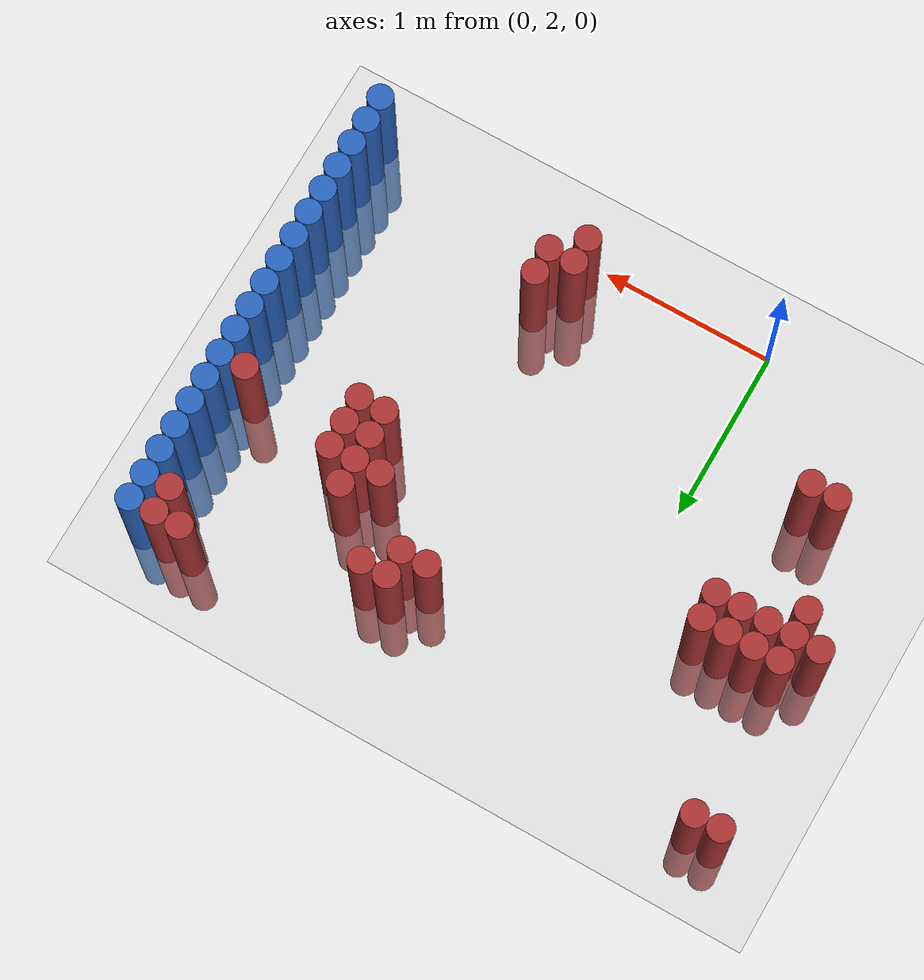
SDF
<sdf version="1.6">
 <world name="default">
  <model name="ground_plane">
   <static>1</static>
   <link name="link">
    <collision name="collision">
     <geometry><plane><normal>0 0 1</normal><size>100 100</size></plane></geometry>
     <surface><friction><ode><mu>100</mu><mu2>50</mu2></ode></friction></surface>
    </collision>
    <visual name="visual">
     <cast_shadows>0</cast_shadows>
     <geometry><plane><normal>0 0 1</normal><size>100 100</size></plane></geometry>
     <material>
      <script><uri>file://media/materials/scripts/gazebo.material</uri><name>Gazebo/Grey</name></script>
     </material>
    </visual>
   </link>
  </model>
  <model name="unit_cylinder_149">
   <static>1</static>
   <pose>-1.025000 3.475000 0.000000 0.000000 0.000000 0.000000</pose>
   <link name="link">
    <inertial>
     <mass>1</mass>
     <inertia><ixx>0.145833</ixx><ixy>0</ixy><ixz>0</ixz><iyy>0.145833</iyy><iyz>0</iyz><izz>0.125</izz></inertia>
    </inertial>
    <collision name="collision">
     <geometry><cylinder><radius>0.075000</radius><length>1.5</length></cylinder></geometry>
    </collision>
    <visual name="visual">
     <geometry><cylinder><radius>0.075000</radius><length>1.5</length></cylinder></geometry>
     <material>
      <ambient>0.648000 0.192000 0.192000 1</ambient>
      <diffuse>0.648000 0.192000 0.192000 1</diffuse>
     </material>
     <material>
      <script><name>Gazebo/Grey</name><uri>file://media/materials/scripts/gazebo.material</uri></script>
     </material>
    </visual>
   </link>
  </model>
  <model name="unit_cylinder_150">
   <static>1</static>
   <pose>-1.025000 4.525000 0.000000 0.000000 0.000000 0.000000</pose>
   <link name="link">
    <inertial>
     <mass>1</mass>
     <inertia><ixx>0.145833</ixx><ixy>0</ixy><ixz>0</ixz><iyy>0.145833</iyy><iyz>0</iyz><izz>0.125</izz></inertia>
    </inertial>
    <collision name="collision">
     <geometry><cylinder><radius>0.075000</radius><length>1.5</length></cylinder></geometry>
    </collision>
    <visual name="visual">
     <geometry><cylinder><radius>0.075000</radius><length>1.5</length></cylinder></geometry>
     <material>
      <ambient>0.648000 0.192000 0.192000 1</ambient>
      <diffuse>0.648000 0.192000 0.192000 1</diffuse>
     </material>
     <material>
      <script><name>Gazebo/Grey</name><uri>file://media/materials/scripts/gazebo.material</uri></script>
     </material>
    </visual>
   </link>
  </model>
  <model name="unit_cylinder_151">
   <static>1</static>
   <pose>-0.875000 3.325000 0.000000 0.000000 0.000000 0.000000</pose>
   <link name="link">
    <inertial>
     <mass>1</mass>
     <inertia><ixx>0.145833</ixx><ixy>0</ixy><ixz>0</ixz><iyy>0.145833</iyy><iyz>0</iyz><izz>0.125</izz></inertia>
    </inertial>
    <collision name="collision">
     <geometry><cylinder><radius>0.075000</radius><length>1.5</length></cylinder></geometry>
    </collision>
    <visual name="visual">
     <geometry><cylinder><radius>0.075000</radius><length>1.5</length></cylinder></geometry>
     <material>
      <ambient>0.648000 0.192000 0.192000 1</ambient>
      <diffuse>0.648000 0.192000 0.192000 1</diffuse>
     </material>
     <material>
      <script><name>Gazebo/Grey</name><uri>file://media/materials/scripts/gazebo.material</uri></script>
     </material>
    </visual>
   </link>
  </model>
  <model name="unit_cylinder_152">
   <static>1</static>
   <pose>-0.875000 3.475000 0.000000 0.000000 0.000000 0.000000</pose>
   <link name="link">
    <inertial>
     <mass>1</mass>
     <inertia><ixx>0.145833</ixx><ixy>0</ixy><ixz>0</ixz><iyy>0.145833</iyy><iyz>0</iyz><izz>0.125</izz></inertia>
    </inertial>
    <collision name="collision">
     <geometry><cylinder><radius>0.075000</radius><length>1.5</length></cylinder></geometry>
    </collision>
    <visual name="visual">
     <geometry><cylinder><radius>0.075000</radius><length>1.5</length></cylinder></geometry>
     <material>
      <ambient>0.648000 0.192000 0.192000 1</ambient>
      <diffuse>0.648000 0.192000 0.192000 1</diffuse>
     </material>
     <material>
      <script><name>Gazebo/Grey</name><uri>file://media/materials/scripts/gazebo.material</uri></script>
     </material>
    </visual>
   </link>
  </model>
  <model name="unit_cylinder_153">
   <static>1</static>
   <pose>-0.875000 3.625000 0.000000 0.000000 0.000000 0.000000</pose>
   <link name="link">
    <inertial>
     <mass>1</mass>
     <inertia><ixx>0.145833</ixx><ixy>0</ixy><ixz>0</ixz><iyy>0.145833</iyy><iyz>0</iyz><izz>0.125</izz></inertia>
    </inertial>
    <collision name="collision">
     <geometry><cylinder><radius>0.075000</radius><length>1.5</length></cylinder></geometry>
    </collision>
    <visual name="visual">
     <geometry><cylinder><radius>0.075000</radius><length>1.5</length></cylinder></geometry>
     <material>
      <ambient>0.648000 0.192000 0.192000 1</ambient>
      <diffuse>0.648000 0.192000 0.192000 1</diffuse>
     </material>
     <material>
      <script><name>Gazebo/Grey</name><uri>file://media/materials/scripts/gazebo.material</uri></script>
     </material>
    </visual>
   </link>
  </model>
  <model name="unit_cylinder_154">
   <static>1</static>
   <pose>-0.875000 4.525000 0.000000 0.000000 0.000000 0.000000</pose>
   <link name="link">
    <inertial>
     <mass>1</mass>
     <inertia><ixx>0.145833</ixx><ixy>0</ixy><ixz>0</ixz><iyy>0.145833</iyy><iyz>0</iyz><izz>0.125</izz></inertia>
    </inertial>
    <collision name="collision">
     <geometry><cylinder><radius>0.075000</radius><length>1.5</length></cylinder></geometry>
    </collision>
    <visual name="visual">
     <geometry><cylinder><radius>0.075000</radius><length>1.5</length></cylinder></geometry>
     <material>
      <ambient>0.648000 0.192000 0.192000 1</ambient>
      <diffuse>0.648000 0.192000 0.192000 1</diffuse>
     </material>
     <material>
      <script><name>Gazebo/Grey</name><uri>file://media/materials/scripts/gazebo.material</uri></script>
     </material>
    </visual>
   </link>
  </model>
  <model name="unit_cylinder_155">
   <static>1</static>
   <pose>-0.725000 2.725000 0.000000 0.000000 0.000000 0.000000</pose>
   <link name="link">
    <inertial>
     <mass>1</mass>
     <inertia><ixx>0.145833</ixx><ixy>0</ixy><ixz>0</ixz><iyy>0.145833</iyy><iyz>0</iyz><izz>0.125</izz></inertia>
    </inertial>
    <collision name="collision">
     <geometry><cylinder><radius>0.075000</radius><length>1.5</length></cylinder></geometry>
    </collision>
    <visual name="visual">
     <geometry><cylinder><radius>0.075000</radius><length>1.5</length></cylinder></geometry>
     <material>
      <ambient>0.648000 0.192000 0.192000 1</ambient>
      <diffuse>0.648000 0.192000 0.192000 1</diffuse>
     </material>
     <material>
      <script><name>Gazebo/Grey</name><uri>file://media/materials/scripts/gazebo.material</uri></script>
     </material>
    </visual>
   </link>
  </model>
  <model name="unit_cylinder_156">
   <static>1</static>
   <pose>-0.725000 3.475000 0.000000 0.000000 0.000000 0.000000</pose>
   <link name="link">
    <inertial>
     <mass>1</mass>
     <inertia><ixx>0.145833</ixx><ixy>0</ixy><ixz>0</ixz><iyy>0.145833</iyy><iyz>0</iyz><izz>0.125</izz></inertia>
    </inertial>
    <collision name="collision">
     <geometry><cylinder><radius>0.075000</radius><length>1.5</length></cylinder></geometry>
    </collision>
    <visual name="visual">
     <geometry><cylinder><radius>0.075000</radius><length>1.5</length></cylinder></geometry>
     <material>
      <ambient>0.648000 0.192000 0.192000 1</ambient>
      <diffuse>0.648000 0.192000 0.192000 1</diffuse>
     </material>
     <material>
      <script><name>Gazebo/Grey</name><uri>file://media/materials/scripts/gazebo.material</uri></script>
     </material>
    </visual>
   </link>
  </model>
  <model name="unit_cylinder_157">
   <static>1</static>
   <pose>-0.725000 3.625000 0.000000 0.000000 0.000000 0.000000</pose>
   <link name="link">
    <inertial>
     <mass>1</mass>
     <inertia><ixx>0.145833</ixx><ixy>0</ixy><ixz>0</ixz><iyy>0.145833</iyy><iyz>0</iyz><izz>0.125</izz></inertia>
    </inertial>
    <collision name="collision">
     <geometry><cylinder><radius>0.075000</radius><length>1.5</length></cylinder></geometry>
    </collision>
    <visual name="visual">
     <geometry><cylinder><radius>0.075000</radius><length>1.5</length></cylinder></geometry>
     <material>
      <ambient>0.648000 0.192000 0.192000 1</ambient>
      <diffuse>0.648000 0.192000 0.192000 1</diffuse>
     </material>
     <material>
      <script><name>Gazebo/Grey</name><uri>file://media/materials/scripts/gazebo.material</uri></script>
     </material>
    </visual>
   </link>
  </model>
  <model name="unit_cylinder_162">
   <static>1</static>
   <pose>-0.575000 2.725000 0.000000 0.000000 0.000000 0.000000</pose>
   <link name="link">
    <inertial>
     <mass>1</mass>
     <inertia><ixx>0.145833</ixx><ixy>0</ixy><ixz>0</ixz><iyy>0.145833</iyy><iyz>0</iyz><izz>0.125</izz></inertia>
    </inertial>
    <collision name="collision">
     <geometry><cylinder><radius>0.075000</radius><length>1.5</length></cylinder></geometry>
    </collision>
    <visual name="visual">
     <geometry><cylinder><radius>0.075000</radius><length>1.5</length></cylinder></geometry>
     <material>
      <ambient>0.648000 0.192000 0.192000 1</ambient>
      <diffuse>0.648000 0.192000 0.192000 1</diffuse>
     </material>
     <material>
      <script><name>Gazebo/Grey</name><uri>file://media/materials/scripts/gazebo.material</uri></script>
     </material>
    </visual>
   </link>
  </model>
  <model name="unit_cylinder_163">
   <static>1</static>
   <pose>-0.575000 3.475000 0.000000 0.000000 0.000000 0.000000</pose>
   <link name="link">
    <inertial>
     <mass>1</mass>
     <inertia><ixx>0.145833</ixx><ixy>0</ixy><ixz>0</ixz><iyy>0.145833</iyy><iyz>0</iyz><izz>0.125</izz></inertia>
    </inertial>
    <collision name="collision">
     <geometry><cylinder><radius>0.075000</radius><length>1.5</length></cylinder></geometry>
    </collision>
    <visual name="visual">
     <geometry><cylinder><radius>0.075000</radius><length>1.5</length></cylinder></geometry>
     <material>
      <ambient>0.648000 0.192000 0.192000 1</ambient>
      <diffuse>0.648000 0.192000 0.192000 1</diffuse>
     </material>
     <material>
      <script><name>Gazebo/Grey</name><uri>file://media/materials/scripts/gazebo.material</uri></script>
     </material>
    </visual>
   </link>
  </model>
  <model name="unit_cylinder_164">
   <static>1</static>
   <pose>-0.575000 3.625000 0.000000 0.000000 0.000000 0.000000</pose>
   <link name="link">
    <inertial>
     <mass>1</mass>
     <inertia><ixx>0.145833</ixx><ixy>0</ixy><ixz>0</ixz><iyy>0.145833</iyy><iyz>0</iyz><izz>0.125</izz></inertia>
    </inertial>
    <collision name="collision">
     <geometry><cylinder><radius>0.075000</radius><length>1.5</length></cylinder></geometry>
    </collision>
    <visual name="visual">
     <geometry><cylinder><radius>0.075000</radius><length>1.5</length></cylinder></geometry>
     <material>
      <ambient>0.648000 0.192000 0.192000 1</ambient>
      <diffuse>0.648000 0.192000 0.192000 1</diffuse>
     </material>
     <material>
      <script><name>Gazebo/Grey</name><uri>file://media/materials/scripts/gazebo.material</uri></script>
     </material>
    </visual>
   </link>
  </model>
  <model name="unit_cylinder_170">
   <static>1</static>
   <pose>-0.425000 3.475000 0.000000 0.000000 0.000000 0.000000</pose>
   <link name="link">
    <inertial>
     <mass>1</mass>
     <inertia><ixx>0.145833</ixx><ixy>0</ixy><ixz>0</ixz><iyy>0.145833</iyy><iyz>0</iyz><izz>0.125</izz></inertia>
    </inertial>
    <collision name="collision">
     <geometry><cylinder><radius>0.075000</radius><length>1.5</length></cylinder></geometry>
    </collision>
    <visual name="visual">
     <geometry><cylinder><radius>0.075000</radius><length>1.5</length></cylinder></geometry>
     <material>
      <ambient>0.648000 0.192000 0.192000 1</ambient>
      <diffuse>0.648000 0.192000 0.192000 1</diffuse>
     </material>
     <material>
      <script><name>Gazebo/Grey</name><uri>file://media/materials/scripts/gazebo.material</uri></script>
     </material>
    </visual>
   </link>
  </model>
  <model name="unit_cylinder_171">
   <static>1</static>
   <pose>-0.425000 3.625000 0.000000 0.000000 0.000000 0.000000</pose>
   <link name="link">
    <inertial>
     <mass>1</mass>
     <inertia><ixx>0.145833</ixx><ixy>0</ixy><ixz>0</ixz><iyy>0.145833</iyy><iyz>0</iyz><izz>0.125</izz></inertia>
    </inertial>
    <collision name="collision">
     <geometry><cylinder><radius>0.075000</radius><length>1.5</length></cylinder></geometry>
    </collision>
    <visual name="visual">
     <geometry><cylinder><radius>0.075000</radius><length>1.5</length></cylinder></geometry>
     <material>
      <ambient>0.648000 0.192000 0.192000 1</ambient>
      <diffuse>0.648000 0.192000 0.192000 1</diffuse>
     </material>
     <material>
      <script><name>Gazebo/Grey</name><uri>file://media/materials/scripts/gazebo.material</uri></script>
     </material>
    </visual>
   </link>
  </model>
  <model name="unit_cylinder_182">
   <static>1</static>
   <pose>0.925000 4.075000 0.000000 0.000000 0.000000 0.000000</pose>
   <link name="link">
    <inertial>
     <mass>1</mass>
     <inertia><ixx>0.145833</ixx><ixy>0</ixy><ixz>0</ixz><iyy>0.145833</iyy><iyz>0</iyz><izz>0.125</izz></inertia>
    </inertial>
    <collision name="collision">
     <geometry><cylinder><radius>0.075000</radius><length>1.5</length></cylinder></geometry>
    </collision>
    <visual name="visual">
     <geometry><cylinder><radius>0.075000</radius><length>1.5</length></cylinder></geometry>
     <material>
      <ambient>0.648000 0.192000 0.192000 1</ambient>
      <diffuse>0.648000 0.192000 0.192000 1</diffuse>
     </material>
     <material>
      <script><name>Gazebo/Grey</name><uri>file://media/materials/scripts/gazebo.material</uri></script>
     </material>
    </visual>
   </link>
  </model>
  <model name="unit_cylinder_183">
   <static>1</static>
   <pose>1.075000 2.125000 0.000000 0.000000 0.000000 0.000000</pose>
   <link name="link">
    <inertial>
     <mass>1</mass>
     <inertia><ixx>0.145833</ixx><ixy>0</ixy><ixz>0</ixz><iyy>0.145833</iyy><iyz>0</iyz><izz>0.125</izz></inertia>
    </inertial>
    <collision name="collision">
     <geometry><cylinder><radius>0.075000</radius><length>1.5</length></cylinder></geometry>
    </collision>
    <visual name="visual">
     <geometry><cylinder><radius>0.075000</radius><length>1.5</length></cylinder></geometry>
     <material>
      <ambient>0.648000 0.192000 0.192000 1</ambient>
      <diffuse>0.648000 0.192000 0.192000 1</diffuse>
     </material>
     <material>
      <script><name>Gazebo/Grey</name><uri>file://media/materials/scripts/gazebo.material</uri></script>
     </material>
    </visual>
   </link>
  </model>
  <model name="unit_cylinder_184">
   <static>1</static>
   <pose>1.075000 2.275000 0.000000 0.000000 0.000000 0.000000</pose>
   <link name="link">
    <inertial>
     <mass>1</mass>
     <inertia><ixx>0.145833</ixx><ixy>0</ixy><ixz>0</ixz><iyy>0.145833</iyy><iyz>0</iyz><izz>0.125</izz></inertia>
    </inertial>
    <collision name="collision">
     <geometry><cylinder><radius>0.075000</radius><length>1.5</length></cylinder></geometry>
    </collision>
    <visual name="visual">
     <geometry><cylinder><radius>0.075000</radius><length>1.5</length></cylinder></geometry>
     <material>
      <ambient>0.648000 0.192000 0.192000 1</ambient>
      <diffuse>0.648000 0.192000 0.192000 1</diffuse>
     </material>
     <material>
      <script><name>Gazebo/Grey</name><uri>file://media/materials/scripts/gazebo.material</uri></script>
     </material>
    </visual>
   </link>
  </model>
  <model name="unit_cylinder_185">
   <static>1</static>
   <pose>1.075000 4.075000 0.000000 0.000000 0.000000 0.000000</pose>
   <link name="link">
    <inertial>
     <mass>1</mass>
     <inertia><ixx>0.145833</ixx><ixy>0</ixy><ixz>0</ixz><iyy>0.145833</iyy><iyz>0</iyz><izz>0.125</izz></inertia>
    </inertial>
    <collision name="collision">
     <geometry><cylinder><radius>0.075000</radius><length>1.5</length></cylinder></geometry>
    </collision>
    <visual name="visual">
     <geometry><cylinder><radius>0.075000</radius><length>1.5</length></cylinder></geometry>
     <material>
      <ambient>0.648000 0.192000 0.192000 1</ambient>
      <diffuse>0.648000 0.192000 0.192000 1</diffuse>
     </material>
     <material>
      <script><name>Gazebo/Grey</name><uri>file://media/materials/scripts/gazebo.material</uri></script>
     </material>
    </visual>
   </link>
  </model>
  <model name="unit_cylinder_186">
   <static>1</static>
   <pose>1.075000 4.225000 0.000000 0.000000 0.000000 0.000000</pose>
   <link name="link">
    <inertial>
     <mass>1</mass>
     <inertia><ixx>0.145833</ixx><ixy>0</ixy><ixz>0</ixz><iyy>0.145833</iyy><iyz>0</iyz><izz>0.125</izz></inertia>
    </inertial>
    <collision name="collision">
     <geometry><cylinder><radius>0.075000</radius><length>1.5</length></cylinder></geometry>
    </collision>
    <visual name="visual">
     <geometry><cylinder><radius>0.075000</radius><length>1.5</length></cylinder></geometry>
     <material>
      <ambient>0.648000 0.192000 0.192000 1</ambient>
      <diffuse>0.648000 0.192000 0.192000 1</diffuse>
     </material>
     <material>
      <script><name>Gazebo/Grey</name><uri>file://media/materials/scripts/gazebo.material</uri></script>
     </material>
    </visual>
   </link>
  </model>
  <model name="unit_cylinder_187">
   <static>1</static>
   <pose>1.225000 2.275000 0.000000 0.000000 0.000000 0.000000</pose>
   <link name="link">
    <inertial>
     <mass>1</mass>
     <inertia><ixx>0.145833</ixx><ixy>0</ixy><ixz>0</ixz><iyy>0.145833</iyy><iyz>0</iyz><izz>0.125</izz></inertia>
    </inertial>
    <collision name="collision">
     <geometry><cylinder><radius>0.075000</radius><length>1.5</length></cylinder></geometry>
    </collision>
    <visual name="visual">
     <geometry><cylinder><radius>0.075000</radius><length>1.5</length></cylinder></geometry>
     <material>
      <ambient>0.648000 0.192000 0.192000 1</ambient>
      <diffuse>0.648000 0.192000 0.192000 1</diffuse>
     </material>
     <material>
      <script><name>Gazebo/Grey</name><uri>file://media/materials/scripts/gazebo.material</uri></script>
     </material>
    </visual>
   </link>
  </model>
  <model name="unit_cylinder_188">
   <static>1</static>
   <pose>1.225000 2.425000 0.000000 0.000000 0.000000 0.000000</pose>
   <link name="link">
    <inertial>
     <mass>1</mass>
     <inertia><ixx>0.145833</ixx><ixy>0</ixy><ixz>0</ixz><iyy>0.145833</iyy><iyz>0</iyz><izz>0.125</izz></inertia>
    </inertial>
    <collision name="collision">
     <geometry><cylinder><radius>0.075000</radius><length>1.5</length></cylinder></geometry>
    </collision>
    <visual name="visual">
     <geometry><cylinder><radius>0.075000</radius><length>1.5</length></cylinder></geometry>
     <material>
      <ambient>0.648000 0.192000 0.192000 1</ambient>
      <diffuse>0.648000 0.192000 0.192000 1</diffuse>
     </material>
     <material>
      <script><name>Gazebo/Grey</name><uri>file://media/materials/scripts/gazebo.material</uri></script>
     </material>
    </visual>
   </link>
  </model>
  <model name="unit_cylinder_189">
   <static>1</static>
   <pose>1.225000 4.225000 0.000000 0.000000 0.000000 0.000000</pose>
   <link name="link">
    <inertial>
     <mass>1</mass>
     <inertia><ixx>0.145833</ixx><ixy>0</ixy><ixz>0</ixz><iyy>0.145833</iyy><iyz>0</iyz><izz>0.125</izz></inertia>
    </inertial>
    <collision name="collision">
     <geometry><cylinder><radius>0.075000</radius><length>1.5</length></cylinder></geometry>
    </collision>
    <visual name="visual">
     <geometry><cylinder><radius>0.075000</radius><length>1.5</length></cylinder></geometry>
     <material>
      <ambient>0.648000 0.192000 0.192000 1</ambient>
      <diffuse>0.648000 0.192000 0.192000 1</diffuse>
     </material>
     <material>
      <script><name>Gazebo/Grey</name><uri>file://media/materials/scripts/gazebo.material</uri></script>
     </material>
    </visual>
   </link>
  </model>
  <model name="unit_cylinder_191">
   <static>1</static>
   <pose>1.375000 3.775000 0.000000 0.000000 0.000000 0.000000</pose>
   <link name="link">
    <inertial>
     <mass>1</mass>
     <inertia><ixx>0.145833</ixx><ixy>0</ixy><ixz>0</ixz><iyy>0.145833</iyy><iyz>0</iyz><izz>0.125</izz></inertia>
    </inertial>
    <collision name="collision">
     <geometry><cylinder><radius>0.075000</radius><length>1.5</length></cylinder></geometry>
    </collision>
    <visual name="visual">
     <geometry><cylinder><radius>0.075000</radius><length>1.5</length></cylinder></geometry>
     <material>
      <ambient>0.648000 0.192000 0.192000 1</ambient>
      <diffuse>0.648000 0.192000 0.192000 1</diffuse>
     </material>
     <material>
      <script><name>Gazebo/Grey</name><uri>file://media/materials/scripts/gazebo.material</uri></script>
     </material>
    </visual>
   </link>
  </model>
  <model name="unit_cylinder_197">
   <static>1</static>
   <pose>1.525000 3.475000 0.000000 0.000000 0.000000 0.000000</pose>
   <link name="link">
    <inertial>
     <mass>1</mass>
     <inertia><ixx>0.145833</ixx><ixy>0</ixy><ixz>0</ixz><iyy>0.145833</iyy><iyz>0</iyz><izz>0.125</izz></inertia>
    </inertial>
    <collision name="collision">
     <geometry><cylinder><radius>0.075000</radius><length>1.5</length></cylinder></geometry>
    </collision>
    <visual name="visual">
     <geometry><cylinder><radius>0.075000</radius><length>1.5</length></cylinder></geometry>
     <material>
      <ambient>0.648000 0.192000 0.192000 1</ambient>
      <diffuse>0.648000 0.192000 0.192000 1</diffuse>
     </material>
     <material>
      <script><name>Gazebo/Grey</name><uri>file://media/materials/scripts/gazebo.material</uri></script>
     </material>
    </visual>
   </link>
  </model>
  <model name="unit_cylinder_198">
   <static>1</static>
   <pose>1.525000 3.625000 0.000000 0.000000 0.000000 0.000000</pose>
   <link name="link">
    <inertial>
     <mass>1</mass>
     <inertia><ixx>0.145833</ixx><ixy>0</ixy><ixz>0</ixz><iyy>0.145833</iyy><iyz>0</iyz><izz>0.125</izz></inertia>
    </inertial>
    <collision name="collision">
     <geometry><cylinder><radius>0.075000</radius><length>1.5</length></cylinder></geometry>
    </collision>
    <visual name="visual">
     <geometry><cylinder><radius>0.075000</radius><length>1.5</length></cylinder></geometry>
     <material>
      <ambient>0.648000 0.192000 0.192000 1</ambient>
      <diffuse>0.648000 0.192000 0.192000 1</diffuse>
     </material>
     <material>
      <script><name>Gazebo/Grey</name><uri>file://media/materials/scripts/gazebo.material</uri></script>
     </material>
    </visual>
   </link>
  </model>
  <model name="unit_cylinder_199">
   <static>1</static>
   <pose>1.525000 3.775000 0.000000 0.000000 0.000000 0.000000</pose>
   <link name="link">
    <inertial>
     <mass>1</mass>
     <inertia><ixx>0.145833</ixx><ixy>0</ixy><ixz>0</ixz><iyy>0.145833</iyy><iyz>0</iyz><izz>0.125</izz></inertia>
    </inertial>
    <collision name="collision">
     <geometry><cylinder><radius>0.075000</radius><length>1.5</length></cylinder></geometry>
    </collision>
    <visual name="visual">
     <geometry><cylinder><radius>0.075000</radius><length>1.5</length></cylinder></geometry>
     <material>
      <ambient>0.648000 0.192000 0.192000 1</ambient>
      <diffuse>0.648000 0.192000 0.192000 1</diffuse>
     </material>
     <material>
      <script><name>Gazebo/Grey</name><uri>file://media/materials/scripts/gazebo.material</uri></script>
     </material>
    </visual>
   </link>
  </model>
  <model name="unit_cylinder_200">
   <static>1</static>
   <pose>1.525000 3.925000 0.000000 0.000000 0.000000 0.000000</pose>
   <link name="link">
    <inertial>
     <mass>1</mass>
     <inertia><ixx>0.145833</ixx><ixy>0</ixy><ixz>0</ixz><iyy>0.145833</iyy><iyz>0</iyz><izz>0.125</izz></inertia>
    </inertial>
    <collision name="collision">
     <geometry><cylinder><radius>0.075000</radius><length>1.5</length></cylinder></geometry>
    </collision>
    <visual name="visual">
     <geometry><cylinder><radius>0.075000</radius><length>1.5</length></cylinder></geometry>
     <material>
      <ambient>0.648000 0.192000 0.192000 1</ambient>
      <diffuse>0.648000 0.192000 0.192000 1</diffuse>
     </material>
     <material>
      <script><name>Gazebo/Grey</name><uri>file://media/materials/scripts/gazebo.material</uri></script>
     </material>
    </visual>
   </link>
  </model>
  <model name="unit_cylinder_206">
   <static>1</static>
   <pose>1.675000 3.475000 0.000000 0.000000 0.000000 0.000000</pose>
   <link name="link">
    <inertial>
     <mass>1</mass>
     <inertia><ixx>0.145833</ixx><ixy>0</ixy><ixz>0</ixz><iyy>0.145833</iyy><iyz>0</iyz><izz>0.125</izz></inertia>
    </inertial>
    <collision name="collision">
     <geometry><cylinder><radius>0.075000</radius><length>1.5</length></cylinder></geometry>
    </collision>
    <visual name="visual">
     <geometry><cylinder><radius>0.075000</radius><length>1.5</length></cylinder></geometry>
     <material>
      <ambient>0.648000 0.192000 0.192000 1</ambient>
      <diffuse>0.648000 0.192000 0.192000 1</diffuse>
     </material>
     <material>
      <script><name>Gazebo/Grey</name><uri>file://media/materials/scripts/gazebo.material</uri></script>
     </material>
    </visual>
   </link>
  </model>
  <model name="unit_cylinder_207">
   <static>1</static>
   <pose>1.675000 3.625000 0.000000 0.000000 0.000000 0.000000</pose>
   <link name="link">
    <inertial>
     <mass>1</mass>
     <inertia><ixx>0.145833</ixx><ixy>0</ixy><ixz>0</ixz><iyy>0.145833</iyy><iyz>0</iyz><izz>0.125</izz></inertia>
    </inertial>
    <collision name="collision">
     <geometry><cylinder><radius>0.075000</radius><length>1.5</length></cylinder></geometry>
    </collision>
    <visual name="visual">
     <geometry><cylinder><radius>0.075000</radius><length>1.5</length></cylinder></geometry>
     <material>
      <ambient>0.648000 0.192000 0.192000 1</ambient>
      <diffuse>0.648000 0.192000 0.192000 1</diffuse>
     </material>
     <material>
      <script><name>Gazebo/Grey</name><uri>file://media/materials/scripts/gazebo.material</uri></script>
     </material>
    </visual>
   </link>
  </model>
  <model name="unit_cylinder_208">
   <static>1</static>
   <pose>1.675000 3.775000 0.000000 0.000000 0.000000 0.000000</pose>
   <link name="link">
    <inertial>
     <mass>1</mass>
     <inertia><ixx>0.145833</ixx><ixy>0</ixy><ixz>0</ixz><iyy>0.145833</iyy><iyz>0</iyz><izz>0.125</izz></inertia>
    </inertial>
    <collision name="collision">
     <geometry><cylinder><radius>0.075000</radius><length>1.5</length></cylinder></geometry>
    </collision>
    <visual name="visual">
     <geometry><cylinder><radius>0.075000</radius><length>1.5</length></cylinder></geometry>
     <material>
      <ambient>0.648000 0.192000 0.192000 1</ambient>
      <diffuse>0.648000 0.192000 0.192000 1</diffuse>
     </material>
     <material>
      <script><name>Gazebo/Grey</name><uri>file://media/materials/scripts/gazebo.material</uri></script>
     </material>
    </visual>
   </link>
  </model>
  <model name="unit_cylinder_216">
   <static>1</static>
   <pose>2.125000 4.525000 0.000000 0.000000 0.000000 0.000000</pose>
   <link name="link">
    <inertial>
     <mass>1</mass>
     <inertia><ixx>0.145833</ixx><ixy>0</ixy><ixz>0</ixz><iyy>0.145833</iyy><iyz>0</iyz><izz>0.125</izz></inertia>
    </inertial>
    <collision name="collision">
     <geometry><cylinder><radius>0.075000</radius><length>1.5</length></cylinder></geometry>
    </collision>
    <visual name="visual">
     <geometry><cylinder><radius>0.075000</radius><length>1.5</length></cylinder></geometry>
     <material>
      <ambient>0.648000 0.192000 0.192000 1</ambient>
      <diffuse>0.648000 0.192000 0.192000 1</diffuse>
     </material>
     <material>
      <script><name>Gazebo/Grey</name><uri>file://media/materials/scripts/gazebo.material</uri></script>
     </material>
    </visual>
   </link>
  </model>
  <model name="unit_cylinder_223">
   <static>1</static>
   <pose>2.275000 3.625000 0.000000 0.000000 0.000000 0.000000</pose>
   <link name="link">
    <inertial>
     <mass>1</mass>
     <inertia><ixx>0.145833</ixx><ixy>0</ixy><ixz>0</ixz><iyy>0.145833</iyy><iyz>0</iyz><izz>0.125</izz></inertia>
    </inertial>
    <collision name="collision">
     <geometry><cylinder><radius>0.075000</radius><length>1.5</length></cylinder></geometry>
    </collision>
    <visual name="visual">
     <geometry><cylinder><radius>0.075000</radius><length>1.5</length></cylinder></geometry>
     <material>
      <ambient>0.648000 0.192000 0.192000 1</ambient>
      <diffuse>0.648000 0.192000 0.192000 1</diffuse>
     </material>
     <material>
      <script><name>Gazebo/Grey</name><uri>file://media/materials/scripts/gazebo.material</uri></script>
     </material>
    </visual>
   </link>
  </model>
  <model name="unit_cylinder_224">
   <static>1</static>
   <pose>2.275000 4.375000 0.000000 0.000000 0.000000 0.000000</pose>
   <link name="link">
    <inertial>
     <mass>1</mass>
     <inertia><ixx>0.145833</ixx><ixy>0</ixy><ixz>0</ixz><iyy>0.145833</iyy><iyz>0</iyz><izz>0.125</izz></inertia>
    </inertial>
    <collision name="collision">
     <geometry><cylinder><radius>0.075000</radius><length>1.5</length></cylinder></geometry>
    </collision>
    <visual name="visual">
     <geometry><cylinder><radius>0.075000</radius><length>1.5</length></cylinder></geometry>
     <material>
      <ambient>0.648000 0.192000 0.192000 1</ambient>
      <diffuse>0.648000 0.192000 0.192000 1</diffuse>
     </material>
     <material>
      <script><name>Gazebo/Grey</name><uri>file://media/materials/scripts/gazebo.material</uri></script>
     </material>
    </visual>
   </link>
  </model>
  <model name="unit_cylinder_225">
   <static>1</static>
   <pose>2.275000 4.525000 0.000000 0.000000 0.000000 0.000000</pose>
   <link name="link">
    <inertial>
     <mass>1</mass>
     <inertia><ixx>0.145833</ixx><ixy>0</ixy><ixz>0</ixz><iyy>0.145833</iyy><iyz>0</iyz><izz>0.125</izz></inertia>
    </inertial>
    <collision name="collision">
     <geometry><cylinder><radius>0.075000</radius><length>1.5</length></cylinder></geometry>
    </collision>
    <visual name="visual">
     <geometry><cylinder><radius>0.075000</radius><length>1.5</length></cylinder></geometry>
     <material>
      <ambient>0.648000 0.192000 0.192000 1</ambient>
      <diffuse>0.648000 0.192000 0.192000 1</diffuse>
     </material>
     <material>
      <script><name>Gazebo/Grey</name><uri>file://media/materials/scripts/gazebo.material</uri></script>
     </material>
    </visual>
   </link>
  </model>
  <model name="unit_cylinder_238">
   <static>1</static>
   <pose>2.425000 1.975000 0.000000 0.000000 0.000000 0.000000</pose>
   <link name="link">
    <inertial>
     <mass>1</mass>
     <inertia><ixx>0.145833</ixx><ixy>0</ixy><ixz>0</ixz><iyy>0.145833</iyy><iyz>0</iyz><izz>0.125</izz></inertia>
    </inertial>
    <collision name="collision">
     <geometry><cylinder><radius>0.075000</radius><length>1.5</length></cylinder></geometry>
    </collision>
    <visual name="visual">
     <geometry><cylinder><radius>0.075000</radius><length>1.5</length></cylinder></geometry>
     <material>
      <ambient>0.152000 0.379000 0.720000 1</ambient>
      <diffuse>0.152000 0.379000 0.720000 1</diffuse>
     </material>
     <material>
      <script><name>Gazebo/Grey</name><uri>file://media/materials/scripts/gazebo.material</uri></script>
     </material>
    </visual>
   </link>
  </model>
  <model name="unit_cylinder_239">
   <static>1</static>
   <pose>2.425000 2.125000 0.000000 0.000000 0.000000 0.000000</pose>
   <link name="link">
    <inertial>
     <mass>1</mass>
     <inertia><ixx>0.145833</ixx><ixy>0</ixy><ixz>0</ixz><iyy>0.145833</iyy><iyz>0</iyz><izz>0.125</izz></inertia>
    </inertial>
    <collision name="collision">
     <geometry><cylinder><radius>0.075000</radius><length>1.5</length></cylinder></geometry>
    </collision>
    <visual name="visual">
     <geometry><cylinder><radius>0.075000</radius><length>1.5</length></cylinder></geometry>
     <material>
      <ambient>0.152000 0.379000 0.720000 1</ambient>
      <diffuse>0.152000 0.379000 0.720000 1</diffuse>
     </material>
     <material>
      <script><name>Gazebo/Grey</name><uri>file://media/materials/scripts/gazebo.material</uri></script>
     </material>
    </visual>
   </link>
  </model>
  <model name="unit_cylinder_240">
   <static>1</static>
   <pose>2.425000 2.275000 0.000000 0.000000 0.000000 0.000000</pose>
   <link name="link">
    <inertial>
     <mass>1</mass>
     <inertia><ixx>0.145833</ixx><ixy>0</ixy><ixz>0</ixz><iyy>0.145833</iyy><iyz>0</iyz><izz>0.125</izz></inertia>
    </inertial>
    <collision name="collision">
     <geometry><cylinder><radius>0.075000</radius><length>1.5</length></cylinder></geometry>
    </collision>
    <visual name="visual">
     <geometry><cylinder><radius>0.075000</radius><length>1.5</length></cylinder></geometry>
     <material>
      <ambient>0.152000 0.379000 0.720000 1</ambient>
      <diffuse>0.152000 0.379000 0.720000 1</diffuse>
     </material>
     <material>
      <script><name>Gazebo/Grey</name><uri>file://media/materials/scripts/gazebo.material</uri></script>
     </material>
    </visual>
   </link>
  </model>
  <model name="unit_cylinder_241">
   <static>1</static>
   <pose>2.425000 2.425000 0.000000 0.000000 0.000000 0.000000</pose>
   <link name="link">
    <inertial>
     <mass>1</mass>
     <inertia><ixx>0.145833</ixx><ixy>0</ixy><ixz>0</ixz><iyy>0.145833</iyy><iyz>0</iyz><izz>0.125</izz></inertia>
    </inertial>
    <collision name="collision">
     <geometry><cylinder><radius>0.075000</radius><length>1.5</length></cylinder></geometry>
    </collision>
    <visual name="visual">
     <geometry><cylinder><radius>0.075000</radius><length>1.5</length></cylinder></geometry>
     <material>
      <ambient>0.152000 0.379000 0.720000 1</ambient>
      <diffuse>0.152000 0.379000 0.720000 1</diffuse>
     </material>
     <material>
      <script><name>Gazebo/Grey</name><uri>file://media/materials/scripts/gazebo.material</uri></script>
     </material>
    </visual>
   </link>
  </model>
  <model name="unit_cylinder_242">
   <static>1</static>
   <pose>2.425000 2.575000 0.000000 0.000000 0.000000 0.000000</pose>
   <link name="link">
    <inertial>
     <mass>1</mass>
     <inertia><ixx>0.145833</ixx><ixy>0</ixy><ixz>0</ixz><iyy>0.145833</iyy><iyz>0</iyz><izz>0.125</izz></inertia>
    </inertial>
    <collision name="collision">
     <geometry><cylinder><radius>0.075000</radius><length>1.5</length></cylinder></geometry>
    </collision>
    <visual name="visual">
     <geometry><cylinder><radius>0.075000</radius><length>1.5</length></cylinder></geometry>
     <material>
      <ambient>0.152000 0.379000 0.720000 1</ambient>
      <diffuse>0.152000 0.379000 0.720000 1</diffuse>
     </material>
     <material>
      <script><name>Gazebo/Grey</name><uri>file://media/materials/scripts/gazebo.material</uri></script>
     </material>
    </visual>
   </link>
  </model>
  <model name="unit_cylinder_243">
   <static>1</static>
   <pose>2.425000 2.725000 0.000000 0.000000 0.000000 0.000000</pose>
   <link name="link">
    <inertial>
     <mass>1</mass>
     <inertia><ixx>0.145833</ixx><ixy>0</ixy><ixz>0</ixz><iyy>0.145833</iyy><iyz>0</iyz><izz>0.125</izz></inertia>
    </inertial>
    <collision name="collision">
     <geometry><cylinder><radius>0.075000</radius><length>1.5</length></cylinder></geometry>
    </collision>
    <visual name="visual">
     <geometry><cylinder><radius>0.075000</radius><length>1.5</length></cylinder></geometry>
     <material>
      <ambient>0.152000 0.379000 0.720000 1</ambient>
      <diffuse>0.152000 0.379000 0.720000 1</diffuse>
     </material>
     <material>
      <script><name>Gazebo/Grey</name><uri>file://media/materials/scripts/gazebo.material</uri></script>
     </material>
    </visual>
   </link>
  </model>
  <model name="unit_cylinder_244">
   <static>1</static>
   <pose>2.425000 2.875000 0.000000 0.000000 0.000000 0.000000</pose>
   <link name="link">
    <inertial>
     <mass>1</mass>
     <inertia><ixx>0.145833</ixx><ixy>0</ixy><ixz>0</ixz><iyy>0.145833</iyy><iyz>0</iyz><izz>0.125</izz></inertia>
    </inertial>
    <collision name="collision">
     <geometry><cylinder><radius>0.075000</radius><length>1.5</length></cylinder></geometry>
    </collision>
    <visual name="visual">
     <geometry><cylinder><radius>0.075000</radius><length>1.5</length></cylinder></geometry>
     <material>
      <ambient>0.152000 0.379000 0.720000 1</ambient>
      <diffuse>0.152000 0.379000 0.720000 1</diffuse>
     </material>
     <material>
      <script><name>Gazebo/Grey</name><uri>file://media/materials/scripts/gazebo.material</uri></script>
     </material>
    </visual>
   </link>
  </model>
  <model name="unit_cylinder_245">
   <static>1</static>
   <pose>2.425000 3.025000 0.000000 0.000000 0.000000 0.000000</pose>
   <link name="link">
    <inertial>
     <mass>1</mass>
     <inertia><ixx>0.145833</ixx><ixy>0</ixy><ixz>0</ixz><iyy>0.145833</iyy><iyz>0</iyz><izz>0.125</izz></inertia>
    </inertial>
    <collision name="collision">
     <geometry><cylinder><radius>0.075000</radius><length>1.5</length></cylinder></geometry>
    </collision>
    <visual name="visual">
     <geometry><cylinder><radius>0.075000</radius><length>1.5</length></cylinder></geometry>
     <material>
      <ambient>0.152000 0.379000 0.720000 1</ambient>
      <diffuse>0.152000 0.379000 0.720000 1</diffuse>
     </material>
     <material>
      <script><name>Gazebo/Grey</name><uri>file://media/materials/scripts/gazebo.material</uri></script>
     </material>
    </visual>
   </link>
  </model>
  <model name="unit_cylinder_246">
   <static>1</static>
   <pose>2.425000 3.175000 0.000000 0.000000 0.000000 0.000000</pose>
   <link name="link">
    <inertial>
     <mass>1</mass>
     <inertia><ixx>0.145833</ixx><ixy>0</ixy><ixz>0</ixz><iyy>0.145833</iyy><iyz>0</iyz><izz>0.125</izz></inertia>
    </inertial>
    <collision name="collision">
     <geometry><cylinder><radius>0.075000</radius><length>1.5</length></cylinder></geometry>
    </collision>
    <visual name="visual">
     <geometry><cylinder><radius>0.075000</radius><length>1.5</length></cylinder></geometry>
     <material>
      <ambient>0.152000 0.379000 0.720000 1</ambient>
      <diffuse>0.152000 0.379000 0.720000 1</diffuse>
     </material>
     <material>
      <script><name>Gazebo/Grey</name><uri>file://media/materials/scripts/gazebo.material</uri></script>
     </material>
    </visual>
   </link>
  </model>
  <model name="unit_cylinder_247">
   <static>1</static>
   <pose>2.425000 3.325000 0.000000 0.000000 0.000000 0.000000</pose>
   <link name="link">
    <inertial>
     <mass>1</mass>
     <inertia><ixx>0.145833</ixx><ixy>0</ixy><ixz>0</ixz><iyy>0.145833</iyy><iyz>0</iyz><izz>0.125</izz></inertia>
    </inertial>
    <collision name="collision">
     <geometry><cylinder><radius>0.075000</radius><length>1.5</length></cylinder></geometry>
    </collision>
    <visual name="visual">
     <geometry><cylinder><radius>0.075000</radius><length>1.5</length></cylinder></geometry>
     <material>
      <ambient>0.152000 0.379000 0.720000 1</ambient>
      <diffuse>0.152000 0.379000 0.720000 1</diffuse>
     </material>
     <material>
      <script><name>Gazebo/Grey</name><uri>file://media/materials/scripts/gazebo.material</uri></script>
     </material>
    </visual>
   </link>
  </model>
  <model name="unit_cylinder_248">
   <static>1</static>
   <pose>2.425000 3.475000 0.000000 0.000000 0.000000 0.000000</pose>
   <link name="link">
    <inertial>
     <mass>1</mass>
     <inertia><ixx>0.145833</ixx><ixy>0</ixy><ixz>0</ixz><iyy>0.145833</iyy><iyz>0</iyz><izz>0.125</izz></inertia>
    </inertial>
    <collision name="collision">
     <geometry><cylinder><radius>0.075000</radius><length>1.5</length></cylinder></geometry>
    </collision>
    <visual name="visual">
     <geometry><cylinder><radius>0.075000</radius><length>1.5</length></cylinder></geometry>
     <material>
      <ambient>0.152000 0.379000 0.720000 1</ambient>
      <diffuse>0.152000 0.379000 0.720000 1</diffuse>
     </material>
     <material>
      <script><name>Gazebo/Grey</name><uri>file://media/materials/scripts/gazebo.material</uri></script>
     </material>
    </visual>
   </link>
  </model>
  <model name="unit_cylinder_249">
   <static>1</static>
   <pose>2.425000 3.625000 0.000000 0.000000 0.000000 0.000000</pose>
   <link name="link">
    <inertial>
     <mass>1</mass>
     <inertia><ixx>0.145833</ixx><ixy>0</ixy><ixz>0</ixz><iyy>0.145833</iyy><iyz>0</iyz><izz>0.125</izz></inertia>
    </inertial>
    <collision name="collision">
     <geometry><cylinder><radius>0.075000</radius><length>1.5</length></cylinder></geometry>
    </collision>
    <visual name="visual">
     <geometry><cylinder><radius>0.075000</radius><length>1.5</length></cylinder></geometry>
     <material>
      <ambient>0.152000 0.379000 0.720000 1</ambient>
      <diffuse>0.152000 0.379000 0.720000 1</diffuse>
     </material>
     <material>
      <script><name>Gazebo/Grey</name><uri>file://media/materials/scripts/gazebo.material</uri></script>
     </material>
    </visual>
   </link>
  </model>
  <model name="unit_cylinder_250">
   <static>1</static>
   <pose>2.425000 3.775000 0.000000 0.000000 0.000000 0.000000</pose>
   <link name="link">
    <inertial>
     <mass>1</mass>
     <inertia><ixx>0.145833</ixx><ixy>0</ixy><ixz>0</ixz><iyy>0.145833</iyy><iyz>0</iyz><izz>0.125</izz></inertia>
    </inertial>
    <collision name="collision">
     <geometry><cylinder><radius>0.075000</radius><length>1.5</length></cylinder></geometry>
    </collision>
    <visual name="visual">
     <geometry><cylinder><radius>0.075000</radius><length>1.5</length></cylinder></geometry>
     <material>
      <ambient>0.152000 0.379000 0.720000 1</ambient>
      <diffuse>0.152000 0.379000 0.720000 1</diffuse>
     </material>
     <material>
      <script><name>Gazebo/Grey</name><uri>file://media/materials/scripts/gazebo.material</uri></script>
     </material>
    </visual>
   </link>
  </model>
  <model name="unit_cylinder_251">
   <static>1</static>
   <pose>2.425000 3.925000 0.000000 0.000000 0.000000 0.000000</pose>
   <link name="link">
    <inertial>
     <mass>1</mass>
     <inertia><ixx>0.145833</ixx><ixy>0</ixy><ixz>0</ixz><iyy>0.145833</iyy><iyz>0</iyz><izz>0.125</izz></inertia>
    </inertial>
    <collision name="collision">
     <geometry><cylinder><radius>0.075000</radius><length>1.5</length></cylinder></geometry>
    </collision>
    <visual name="visual">
     <geometry><cylinder><radius>0.075000</radius><length>1.5</length></cylinder></geometry>
     <material>
      <ambient>0.152000 0.379000 0.720000 1</ambient>
      <diffuse>0.152000 0.379000 0.720000 1</diffuse>
     </material>
     <material>
      <script><name>Gazebo/Grey</name><uri>file://media/materials/scripts/gazebo.material</uri></script>
     </material>
    </visual>
   </link>
  </model>
  <model name="unit_cylinder_252">
   <static>1</static>
   <pose>2.425000 4.075000 0.000000 0.000000 0.000000 0.000000</pose>
   <link name="link">
    <inertial>
     <mass>1</mass>
     <inertia><ixx>0.145833</ixx><ixy>0</ixy><ixz>0</ixz><iyy>0.145833</iyy><iyz>0</iyz><izz>0.125</izz></inertia>
    </inertial>
    <collision name="collision">
     <geometry><cylinder><radius>0.075000</radius><length>1.5</length></cylinder></geometry>
    </collision>
    <visual name="visual">
     <geometry><cylinder><radius>0.075000</radius><length>1.5</length></cylinder></geometry>
     <material>
      <ambient>0.152000 0.379000 0.720000 1</ambient>
      <diffuse>0.152000 0.379000 0.720000 1</diffuse>
     </material>
     <material>
      <script><name>Gazebo/Grey</name><uri>file://media/materials/scripts/gazebo.material</uri></script>
     </material>
    </visual>
   </link>
  </model>
  <model name="unit_cylinder_253">
   <static>1</static>
   <pose>2.425000 4.225000 0.000000 0.000000 0.000000 0.000000</pose>
   <link name="link">
    <inertial>
     <mass>1</mass>
     <inertia><ixx>0.145833</ixx><ixy>0</ixy><ixz>0</ixz><iyy>0.145833</iyy><iyz>0</iyz><izz>0.125</izz></inertia>
    </inertial>
    <collision name="collision">
     <geometry><cylinder><radius>0.075000</radius><length>1.5</length></cylinder></geometry>
    </collision>
    <visual name="visual">
     <geometry><cylinder><radius>0.075000</radius><length>1.5</length></cylinder></geometry>
     <material>
      <ambient>0.152000 0.379000 0.720000 1</ambient>
      <diffuse>0.152000 0.379000 0.720000 1</diffuse>
     </material>
     <material>
      <script><name>Gazebo/Grey</name><uri>file://media/materials/scripts/gazebo.material</uri></script>
     </material>
    </visual>
   </link>
  </model>
  <model name="unit_cylinder_254">
   <static>1</static>
   <pose>2.425000 4.375000 0.000000 0.000000 0.000000 0.000000</pose>
   <link name="link">
    <inertial>
     <mass>1</mass>
     <inertia><ixx>0.145833</ixx><ixy>0</ixy><ixz>0</ixz><iyy>0.145833</iyy><iyz>0</iyz><izz>0.125</izz></inertia>
    </inertial>
    <collision name="collision">
     <geometry><cylinder><radius>0.075000</radius><length>1.5</length></cylinder></geometry>
    </collision>
    <visual name="visual">
     <geometry><cylinder><radius>0.075000</radius><length>1.5</length></cylinder></geometry>
     <material>
      <ambient>0.152000 0.379000 0.720000 1</ambient>
      <diffuse>0.152000 0.379000 0.720000 1</diffuse>
     </material>
     <material>
      <script><name>Gazebo/Grey</name><uri>file://media/materials/scripts/gazebo.material</uri></script>
     </material>
    </visual>
   </link>
  </model>
  <model name="unit_cylinder_255">
   <static>1</static>
   <pose>2.425000 4.525000 0.000000 0.000000 0.000000 0.000000</pose>
   <link name="link">
    <inertial>
     <mass>1</mass>
     <inertia><ixx>0.145833</ixx><ixy>0</ixy><ixz>0</ixz><iyy>0.145833</iyy><iyz>0</iyz><izz>0.125</izz></inertia>
    </inertial>
    <collision name="collision">
     <geometry><cylinder><radius>0.075000</radius><length>1.5</length></cylinder></geometry>
    </collision>
    <visual name="visual">
     <geometry><cylinder><radius>0.075000</radius><length>1.5</length></cylinder></geometry>
     <material>
      <ambient>0.152000 0.379000 0.720000 1</ambient>
      <diffuse>0.152000 0.379000 0.720000 1</diffuse>
     </material>
     <material>
      <script><name>Gazebo/Grey</name><uri>file://media/materials/scripts/gazebo.material</uri></script>
     </material>
    </visual>
   </link>
  </model>
 </world>
</sdf>
